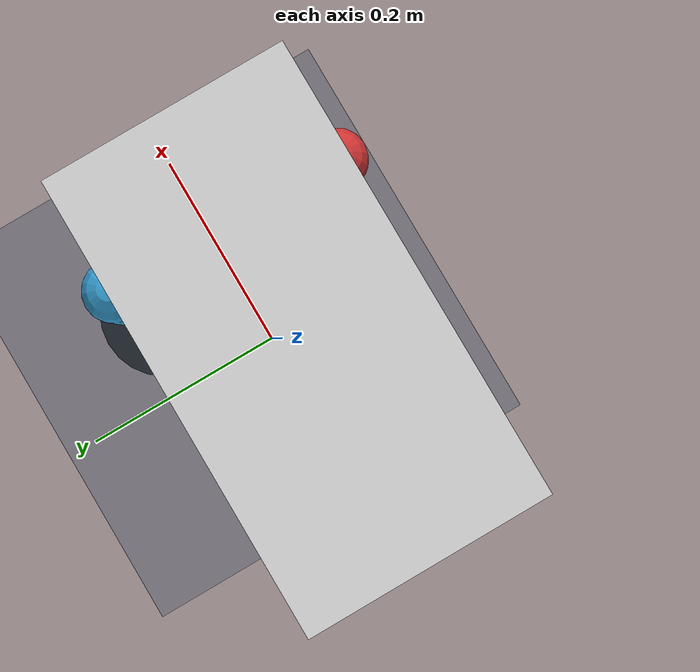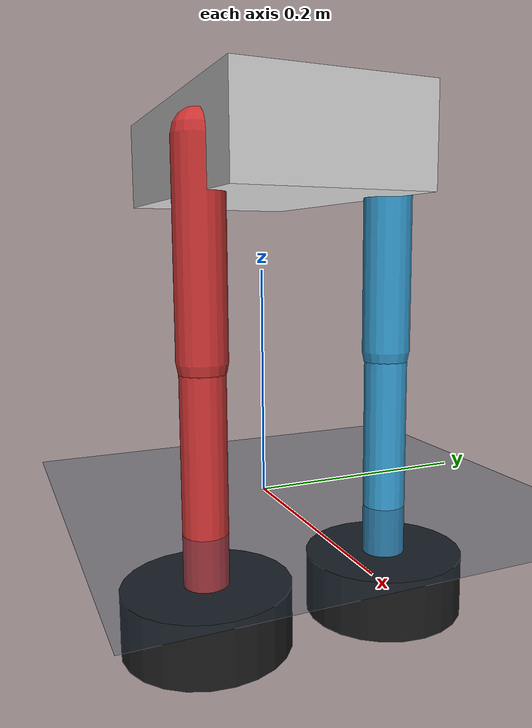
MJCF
<mujoco model="serialleg">
  <compiler angle="radian" meshdir="../meshes/"/>

  <option timestep="0.005" iterations="50"/>

  <asset>
    <texture type="2d" name="grid" builtin="checker" rgb1="0.1 0.2 0.3" rgb2="0.2 0.3 0.4" width="512" height="512"/>
    <material name="grid" texture="grid" texuniform="true" reflectance="0.2"/>
  </asset>

  <worldbody>
    <geom name="floor" size="0 0 0.05" type="plane" friction="0.8" material="grid"/>
    <light name="spotlight" target="base_link" pos="0 -6 4" dir="0 0 -1" cutoff="30" diffuse="0.8 0.8 0.8" mode="targetbodycom"/>
    <body name="base_link" pos="0 0 0.3">
      <inertial pos="0 0 0" mass="11.88" diaginertia="0.157 0.164 0.258"/>
      <joint type="free" limited="false" actuatorfrclimited="false"/>
      <geom name="base_geom" size="0.15 0.08 0.04" type="box" friction="0.8" rgba="0.8 0.8 0.8 1"/>
      <body name="lf0_Link" pos="0.08 0.08 0">
        <inertial pos="0 0 -0.08" mass="0.3" diaginertia="0.001 0.001 0.0005"/>
        <joint name="lf0_Joint" pos="0 0 0" axis="1 0 0" range="-1.57 1.57" damping="0.1"/>
        <geom name="lf0_geom" size="0.02 0.0835" pos="0 0 -0.0835" type="capsule" rgba="0.2 0.6 0.8 1"/>
        <body name="lf1_Link" pos="0 0 -0.167">
          <inertial pos="0 0 -0.1" mass="0.35" diaginertia="0.002 0.002 0.0005"/>
          <joint name="lf1_Joint" pos="0 0 0" axis="1 0 0" range="-0.6 0.8" damping="0.1"/>
          <geom name="lf1_geom" size="0.018 0.1" pos="0 0 -0.1" type="capsule" rgba="0.2 0.6 0.8 1"/>
          <body name="l_wheel_Link" pos="0 0 -0.2">
            <inertial pos="0 0 0" mass="0.28" diaginertia="0.0005 0.0005 0.0008"/>
            <joint name="l_wheel_Joint" pos="0 0 0" axis="0 1 0" damping="0.05"/>
            <geom name="l_wheel_geom" size="0.0675 0.025" type="cylinder" rgba="0.1 0.1 0.1 1"/>
          </body>
        </body>
      </body>
      <body name="rf0_Link" pos="0.08 -0.08 0">
        <inertial pos="0 0 -0.08" mass="0.3" diaginertia="0.001 0.001 0.0005"/>
        <joint name="rf0_Joint" pos="0 0 0" axis="1 0 0" range="-1.57 1.57" damping="0.1"/>
        <geom name="rf0_geom" size="0.02 0.0835" pos="0 0 -0.0835" type="capsule" rgba="0.8 0.2 0.2 1"/>
        <body name="rf1_Link" pos="0 0 -0.167">
          <inertial pos="0 0 -0.1" mass="0.33" diaginertia="0.002 0.002 0.0005"/>
          <joint name="rf1_Joint" pos="0 0 0" axis="1 0 0" range="-0.6 0.8" damping="0.1"/>
          <geom name="rf1_geom" size="0.018 0.1" pos="0 0 -0.1" type="capsule" rgba="0.8 0.2 0.2 1"/>
          <body name="r_wheel_Link" pos="0 0 -0.2">
            <inertial pos="0 0 0" mass="0.28" diaginertia="0.0005 0.0005 0.0008"/>
            <joint name="r_wheel_Joint" pos="0 0 0" axis="0 1 0" damping="0.05"/>
            <geom name="r_wheel_geom" size="0.0675 0.025" type="cylinder" rgba="0.1 0.1 0.1 1"/>
          </body>
        </body>
      </body>
    </body>
  </worldbody>

  <actuator>
    <!-- 使用motor actuator进行直接力矩控制 -->
    <motor name="lf0_act" joint="lf0_Joint" gear="1" ctrllimited="true" ctrlrange="-30 30"/>
    <motor name="lf1_act" joint="lf1_Joint" gear="1" ctrllimited="true" ctrlrange="-30 30"/>
    <motor name="l_wheel_act" joint="l_wheel_Joint" gear="1" ctrllimited="true" ctrlrange="-2 2"/>
    <motor name="rf0_act" joint="rf0_Joint" gear="1" ctrllimited="true" ctrlrange="-30 30"/>
    <motor name="rf1_act" joint="rf1_Joint" gear="1" ctrllimited="true" ctrlrange="-30 30"/>
    <motor name="r_wheel_act" joint="r_wheel_Joint" gear="1" ctrllimited="true" ctrlrange="-2 2"/>
  </actuator>
</mujoco>
